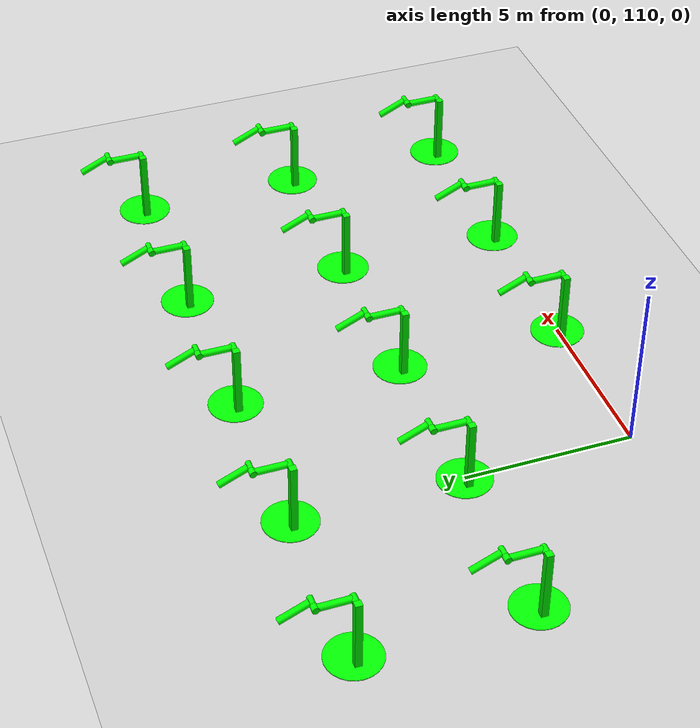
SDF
<sdf version="1.6">
 <world name="double_pendulums">
  <model name="ground_plane">
   <static>true</static>
   <link name="link">
    <collision name="collision">
     <geometry><plane><normal>0 0 1</normal><size>100 100</size></plane></geometry>
    </collision>
    <visual name="visual">
     <geometry><plane><normal>0 0 1</normal><size>100 100</size></plane></geometry>
     <material>
      <ambient>0.8 0.8 0.8 1</ambient>
      <diffuse>0.8 0.8 0.8 1</diffuse>
      <specular>0.8 0.8 0.8 1</specular>
     </material>
    </visual>
   </link>
  </model>
  <model name="dbl_pendulum_561">
   <pose>5 110 0 0 0 0</pose>
   <link name="base">
    <inertial><mass>100</mass></inertial>
    <visual name="vis_plate_on_ground">
     <pose>0 0 0.01 0 0 0</pose>
     <geometry><cylinder><radius>0.8</radius><length>0.02</length></cylinder></geometry>
     <material><ambient>0 1 0 1</ambient><diffuse>0 1 0 1</diffuse><specular>0 1 0 1</specular></material>
    </visual>
    <visual name="vis_pole">
     <pose>-0.275 0 1.1 0 0 0</pose>
     <geometry><box><size>0.2 0.2 2.2</size></box></geometry>
     <material><ambient>0 1 0 1</ambient><diffuse>0 1 0 1</diffuse><specular>0 1 0 1</specular></material>
    </visual>
    <collision name="col_plate_on_ground">
     <pose>0 0 0.01 0 0 0</pose>
     <geometry><cylinder><radius>0.8</radius><length>0.02</length></cylinder></geometry>
    </collision>
    <collision name="col_pole">
     <pose>-0.275 0 1.1 0 0 0</pose>
     <geometry><box><size>0.2 0.2 2.2</size></box></geometry>
    </collision>
   </link>
   <link name="upper_link">
    <pose>0 0 2.1 -1.5708 0 0</pose>
    <inertial><pose>0 0 0.5 0 0 0</pose></inertial>
    <visual name="vis_upper_joint">
     <pose>-0.05 0 0 0 1.5708 0</pose>
     <geometry><cylinder><radius>0.1</radius><length>0.3</length></cylinder></geometry>
     <material><ambient>0 1 0 1</ambient><diffuse>0 1 0 1</diffuse><specular>0 1 0 1</specular></material>
    </visual>
    <visual name="vis_lower_joint">
     <pose>0 0 1.0 0 1.5708 0</pose>
     <geometry><cylinder><radius>0.1</radius><length>0.2</length></cylinder></geometry>
     <material><ambient>0 1 0 1</ambient><diffuse>0 1 0 1</diffuse><specular>0 1 0 1</specular></material>
    </visual>
    <visual name="vis_cylinder">
     <pose>0 0 0.5 0 0 0</pose>
     <geometry><cylinder><radius>0.1</radius><length>0.9</length></cylinder></geometry>
     <material><ambient>0 1 0 1</ambient><diffuse>0 1 0 1</diffuse><specular>0 1 0 1</specular></material>
    </visual>
    <collision name="col_upper_joint">
     <pose>-0.05 0 0 0 1.5708 0</pose>
     <geometry><cylinder><radius>0.1</radius><length>0.3</length></cylinder></geometry>
    </collision>
    <collision name="col_lower_joint">
     <pose>0 0 1.0 0 1.5708 0</pose>
     <geometry><cylinder><radius>0.1</radius><length>0.2</length></cylinder></geometry>
    </collision>
    <collision name="col_cylinder">
     <pose>0 0 0.5 0 0 0</pose>
     <geometry><cylinder><radius>0.1</radius><length>0.9</length></cylinder></geometry>
    </collision>
   </link>
   <link name="lower_link">
    <pose>0.25 1.0 2.1 -2 0 0</pose>
    <inertial><pose>0 0 0.5 0 0 0</pose></inertial>
    <visual name="vis_lower_joint">
     <pose>0 0 0 0 1.5708 0</pose>
     <geometry><cylinder><radius>0.08</radius><length>0.3</length></cylinder></geometry>
     <material><ambient>0 1 0 1</ambient><diffuse>0 1 0 1</diffuse><specular>0 1 0 1</specular></material>
    </visual>
    <visual name="vis_cylinder">
     <pose>0 0 0.5 0 0 0</pose>
     <geometry><cylinder><radius>0.1</radius><length>0.9</length></cylinder></geometry>
     <material><ambient>0 1 0 1</ambient><diffuse>0 1 0 1</diffuse><specular>0 1 0 1</specular></material>
    </visual>
    <collision name="col_lower_joint">
     <pose>0 0 0 0 1.5708 0</pose>
     <geometry><cylinder><radius>0.08</radius><length>0.3</length></cylinder></geometry>
    </collision>
    <collision name="col_cylinder">
     <pose>0 0 0.5 0 0 0</pose>
     <geometry><cylinder><radius>0.1</radius><length>0.9</length></cylinder></geometry>
    </collision>
   </link>
   <joint name="upper_joint" type="revolute">
    <parent>base</parent>
    <child>upper_link</child>
    <axis><xyz>1.0 0 0</xyz></axis>
   </joint>
   <joint name="lower_joint" type="revolute">
    <parent>upper_link</parent>
    <child>lower_link</child>
    <axis><xyz>1.0 0 0</xyz></axis>
   </joint>
  </model>
  <model name="dbl_pendulum_562">
   <pose>10 110 0 0 0 0</pose>
   <link name="base">
    <inertial><mass>100</mass></inertial>
    <visual name="vis_plate_on_ground">
     <pose>0 0 0.01 0 0 0</pose>
     <geometry><cylinder><radius>0.8</radius><length>0.02</length></cylinder></geometry>
     <material><ambient>0 1 0 1</ambient><diffuse>0 1 0 1</diffuse><specular>0 1 0 1</specular></material>
    </visual>
    <visual name="vis_pole">
     <pose>-0.275 0 1.1 0 0 0</pose>
     <geometry><box><size>0.2 0.2 2.2</size></box></geometry>
     <material><ambient>0 1 0 1</ambient><diffuse>0 1 0 1</diffuse><specular>0 1 0 1</specular></material>
    </visual>
    <collision name="col_plate_on_ground">
     <pose>0 0 0.01 0 0 0</pose>
     <geometry><cylinder><radius>0.8</radius><length>0.02</length></cylinder></geometry>
    </collision>
    <collision name="col_pole">
     <pose>-0.275 0 1.1 0 0 0</pose>
     <geometry><box><size>0.2 0.2 2.2</size></box></geometry>
    </collision>
   </link>
   <link name="upper_link">
    <pose>0 0 2.1 -1.5708 0 0</pose>
    <inertial><pose>0 0 0.5 0 0 0</pose></inertial>
    <visual name="vis_upper_joint">
     <pose>-0.05 0 0 0 1.5708 0</pose>
     <geometry><cylinder><radius>0.1</radius><length>0.3</length></cylinder></geometry>
     <material><ambient>0 1 0 1</ambient><diffuse>0 1 0 1</diffuse><specular>0 1 0 1</specular></material>
    </visual>
    <visual name="vis_lower_joint">
     <pose>0 0 1.0 0 1.5708 0</pose>
     <geometry><cylinder><radius>0.1</radius><length>0.2</length></cylinder></geometry>
     <material><ambient>0 1 0 1</ambient><diffuse>0 1 0 1</diffuse><specular>0 1 0 1</specular></material>
    </visual>
    <visual name="vis_cylinder">
     <pose>0 0 0.5 0 0 0</pose>
     <geometry><cylinder><radius>0.1</radius><length>0.9</length></cylinder></geometry>
     <material><ambient>0 1 0 1</ambient><diffuse>0 1 0 1</diffuse><specular>0 1 0 1</specular></material>
    </visual>
    <collision name="col_upper_joint">
     <pose>-0.05 0 0 0 1.5708 0</pose>
     <geometry><cylinder><radius>0.1</radius><length>0.3</length></cylinder></geometry>
    </collision>
    <collision name="col_lower_joint">
     <pose>0 0 1.0 0 1.5708 0</pose>
     <geometry><cylinder><radius>0.1</radius><length>0.2</length></cylinder></geometry>
    </collision>
    <collision name="col_cylinder">
     <pose>0 0 0.5 0 0 0</pose>
     <geometry><cylinder><radius>0.1</radius><length>0.9</length></cylinder></geometry>
    </collision>
   </link>
   <link name="lower_link">
    <pose>0.25 1.0 2.1 -2 0 0</pose>
    <inertial><pose>0 0 0.5 0 0 0</pose></inertial>
    <visual name="vis_lower_joint">
     <pose>0 0 0 0 1.5708 0</pose>
     <geometry><cylinder><radius>0.08</radius><length>0.3</length></cylinder></geometry>
     <material><ambient>0 1 0 1</ambient><diffuse>0 1 0 1</diffuse><specular>0 1 0 1</specular></material>
    </visual>
    <visual name="vis_cylinder">
     <pose>0 0 0.5 0 0 0</pose>
     <geometry><cylinder><radius>0.1</radius><length>0.9</length></cylinder></geometry>
     <material><ambient>0 1 0 1</ambient><diffuse>0 1 0 1</diffuse><specular>0 1 0 1</specular></material>
    </visual>
    <collision name="col_lower_joint">
     <pose>0 0 0 0 1.5708 0</pose>
     <geometry><cylinder><radius>0.08</radius><length>0.3</length></cylinder></geometry>
    </collision>
    <collision name="col_cylinder">
     <pose>0 0 0.5 0 0 0</pose>
     <geometry><cylinder><radius>0.1</radius><length>0.9</length></cylinder></geometry>
    </collision>
   </link>
   <joint name="upper_joint" type="revolute">
    <parent>base</parent>
    <child>upper_link</child>
    <axis><xyz>1.0 0 0</xyz></axis>
   </joint>
   <joint name="lower_joint" type="revolute">
    <parent>upper_link</parent>
    <child>lower_link</child>
    <axis><xyz>1.0 0 0</xyz></axis>
   </joint>
  </model>
  <model name="dbl_pendulum_563">
   <pose>15 110 0 0 0 0</pose>
   <link name="base">
    <inertial><mass>100</mass></inertial>
    <visual name="vis_plate_on_ground">
     <pose>0 0 0.01 0 0 0</pose>
     <geometry><cylinder><radius>0.8</radius><length>0.02</length></cylinder></geometry>
     <material><ambient>0 1 0 1</ambient><diffuse>0 1 0 1</diffuse><specular>0 1 0 1</specular></material>
    </visual>
    <visual name="vis_pole">
     <pose>-0.275 0 1.1 0 0 0</pose>
     <geometry><box><size>0.2 0.2 2.2</size></box></geometry>
     <material><ambient>0 1 0 1</ambient><diffuse>0 1 0 1</diffuse><specular>0 1 0 1</specular></material>
    </visual>
    <collision name="col_plate_on_ground">
     <pose>0 0 0.01 0 0 0</pose>
     <geometry><cylinder><radius>0.8</radius><length>0.02</length></cylinder></geometry>
    </collision>
    <collision name="col_pole">
     <pose>-0.275 0 1.1 0 0 0</pose>
     <geometry><box><size>0.2 0.2 2.2</size></box></geometry>
    </collision>
   </link>
   <link name="upper_link">
    <pose>0 0 2.1 -1.5708 0 0</pose>
    <inertial><pose>0 0 0.5 0 0 0</pose></inertial>
    <visual name="vis_upper_joint">
     <pose>-0.05 0 0 0 1.5708 0</pose>
     <geometry><cylinder><radius>0.1</radius><length>0.3</length></cylinder></geometry>
     <material><ambient>0 1 0 1</ambient><diffuse>0 1 0 1</diffuse><specular>0 1 0 1</specular></material>
    </visual>
    <visual name="vis_lower_joint">
     <pose>0 0 1.0 0 1.5708 0</pose>
     <geometry><cylinder><radius>0.1</radius><length>0.2</length></cylinder></geometry>
     <material><ambient>0 1 0 1</ambient><diffuse>0 1 0 1</diffuse><specular>0 1 0 1</specular></material>
    </visual>
    <visual name="vis_cylinder">
     <pose>0 0 0.5 0 0 0</pose>
     <geometry><cylinder><radius>0.1</radius><length>0.9</length></cylinder></geometry>
     <material><ambient>0 1 0 1</ambient><diffuse>0 1 0 1</diffuse><specular>0 1 0 1</specular></material>
    </visual>
    <collision name="col_upper_joint">
     <pose>-0.05 0 0 0 1.5708 0</pose>
     <geometry><cylinder><radius>0.1</radius><length>0.3</length></cylinder></geometry>
    </collision>
    <collision name="col_lower_joint">
     <pose>0 0 1.0 0 1.5708 0</pose>
     <geometry><cylinder><radius>0.1</radius><length>0.2</length></cylinder></geometry>
    </collision>
    <collision name="col_cylinder">
     <pose>0 0 0.5 0 0 0</pose>
     <geometry><cylinder><radius>0.1</radius><length>0.9</length></cylinder></geometry>
    </collision>
   </link>
   <link name="lower_link">
    <pose>0.25 1.0 2.1 -2 0 0</pose>
    <inertial><pose>0 0 0.5 0 0 0</pose></inertial>
    <visual name="vis_lower_joint">
     <pose>0 0 0 0 1.5708 0</pose>
     <geometry><cylinder><radius>0.08</radius><length>0.3</length></cylinder></geometry>
     <material><ambient>0 1 0 1</ambient><diffuse>0 1 0 1</diffuse><specular>0 1 0 1</specular></material>
    </visual>
    <visual name="vis_cylinder">
     <pose>0 0 0.5 0 0 0</pose>
     <geometry><cylinder><radius>0.1</radius><length>0.9</length></cylinder></geometry>
     <material><ambient>0 1 0 1</ambient><diffuse>0 1 0 1</diffuse><specular>0 1 0 1</specular></material>
    </visual>
    <collision name="col_lower_joint">
     <pose>0 0 0 0 1.5708 0</pose>
     <geometry><cylinder><radius>0.08</radius><length>0.3</length></cylinder></geometry>
    </collision>
    <collision name="col_cylinder">
     <pose>0 0 0.5 0 0 0</pose>
     <geometry><cylinder><radius>0.1</radius><length>0.9</length></cylinder></geometry>
    </collision>
   </link>
   <joint name="upper_joint" type="revolute">
    <parent>base</parent>
    <child>upper_link</child>
    <axis><xyz>1.0 0 0</xyz></axis>
   </joint>
   <joint name="lower_joint" type="revolute">
    <parent>upper_link</parent>
    <child>lower_link</child>
    <axis><xyz>1.0 0 0</xyz></axis>
   </joint>
  </model>
  <model name="dbl_pendulum_584">
   <pose>-5 115 0 0 0 0</pose>
   <link name="base">
    <inertial><mass>100</mass></inertial>
    <visual name="vis_plate_on_ground">
     <pose>0 0 0.01 0 0 0</pose>
     <geometry><cylinder><radius>0.8</radius><length>0.02</length></cylinder></geometry>
     <material><ambient>0 1 0 1</ambient><diffuse>0 1 0 1</diffuse><specular>0 1 0 1</specular></material>
    </visual>
    <visual name="vis_pole">
     <pose>-0.275 0 1.1 0 0 0</pose>
     <geometry><box><size>0.2 0.2 2.2</size></box></geometry>
     <material><ambient>0 1 0 1</ambient><diffuse>0 1 0 1</diffuse><specular>0 1 0 1</specular></material>
    </visual>
    <collision name="col_plate_on_ground">
     <pose>0 0 0.01 0 0 0</pose>
     <geometry><cylinder><radius>0.8</radius><length>0.02</length></cylinder></geometry>
    </collision>
    <collision name="col_pole">
     <pose>-0.275 0 1.1 0 0 0</pose>
     <geometry><box><size>0.2 0.2 2.2</size></box></geometry>
    </collision>
   </link>
   <link name="upper_link">
    <pose>0 0 2.1 -1.5708 0 0</pose>
    <inertial><pose>0 0 0.5 0 0 0</pose></inertial>
    <visual name="vis_upper_joint">
     <pose>-0.05 0 0 0 1.5708 0</pose>
     <geometry><cylinder><radius>0.1</radius><length>0.3</length></cylinder></geometry>
     <material><ambient>0 1 0 1</ambient><diffuse>0 1 0 1</diffuse><specular>0 1 0 1</specular></material>
    </visual>
    <visual name="vis_lower_joint">
     <pose>0 0 1.0 0 1.5708 0</pose>
     <geometry><cylinder><radius>0.1</radius><length>0.2</length></cylinder></geometry>
     <material><ambient>0 1 0 1</ambient><diffuse>0 1 0 1</diffuse><specular>0 1 0 1</specular></material>
    </visual>
    <visual name="vis_cylinder">
     <pose>0 0 0.5 0 0 0</pose>
     <geometry><cylinder><radius>0.1</radius><length>0.9</length></cylinder></geometry>
     <material><ambient>0 1 0 1</ambient><diffuse>0 1 0 1</diffuse><specular>0 1 0 1</specular></material>
    </visual>
    <collision name="col_upper_joint">
     <pose>-0.05 0 0 0 1.5708 0</pose>
     <geometry><cylinder><radius>0.1</radius><length>0.3</length></cylinder></geometry>
    </collision>
    <collision name="col_lower_joint">
     <pose>0 0 1.0 0 1.5708 0</pose>
     <geometry><cylinder><radius>0.1</radius><length>0.2</length></cylinder></geometry>
    </collision>
    <collision name="col_cylinder">
     <pose>0 0 0.5 0 0 0</pose>
     <geometry><cylinder><radius>0.1</radius><length>0.9</length></cylinder></geometry>
    </collision>
   </link>
   <link name="lower_link">
    <pose>0.25 1.0 2.1 -2 0 0</pose>
    <inertial><pose>0 0 0.5 0 0 0</pose></inertial>
    <visual name="vis_lower_joint">
     <pose>0 0 0 0 1.5708 0</pose>
     <geometry><cylinder><radius>0.08</radius><length>0.3</length></cylinder></geometry>
     <material><ambient>0 1 0 1</ambient><diffuse>0 1 0 1</diffuse><specular>0 1 0 1</specular></material>
    </visual>
    <visual name="vis_cylinder">
     <pose>0 0 0.5 0 0 0</pose>
     <geometry><cylinder><radius>0.1</radius><length>0.9</length></cylinder></geometry>
     <material><ambient>0 1 0 1</ambient><diffuse>0 1 0 1</diffuse><specular>0 1 0 1</specular></material>
    </visual>
    <collision name="col_lower_joint">
     <pose>0 0 0 0 1.5708 0</pose>
     <geometry><cylinder><radius>0.08</radius><length>0.3</length></cylinder></geometry>
    </collision>
    <collision name="col_cylinder">
     <pose>0 0 0.5 0 0 0</pose>
     <geometry><cylinder><radius>0.1</radius><length>0.9</length></cylinder></geometry>
    </collision>
   </link>
   <joint name="upper_joint" type="revolute">
    <parent>base</parent>
    <child>upper_link</child>
    <axis><xyz>1.0 0 0</xyz></axis>
   </joint>
   <joint name="lower_joint" type="revolute">
    <parent>upper_link</parent>
    <child>lower_link</child>
    <axis><xyz>1.0 0 0</xyz></axis>
   </joint>
  </model>
  <model name="dbl_pendulum_585">
   <pose>0 115 0 0 0 0</pose>
   <link name="base">
    <inertial><mass>100</mass></inertial>
    <visual name="vis_plate_on_ground">
     <pose>0 0 0.01 0 0 0</pose>
     <geometry><cylinder><radius>0.8</radius><length>0.02</length></cylinder></geometry>
     <material><ambient>0 1 0 1</ambient><diffuse>0 1 0 1</diffuse><specular>0 1 0 1</specular></material>
    </visual>
    <visual name="vis_pole">
     <pose>-0.275 0 1.1 0 0 0</pose>
     <geometry><box><size>0.2 0.2 2.2</size></box></geometry>
     <material><ambient>0 1 0 1</ambient><diffuse>0 1 0 1</diffuse><specular>0 1 0 1</specular></material>
    </visual>
    <collision name="col_plate_on_ground">
     <pose>0 0 0.01 0 0 0</pose>
     <geometry><cylinder><radius>0.8</radius><length>0.02</length></cylinder></geometry>
    </collision>
    <collision name="col_pole">
     <pose>-0.275 0 1.1 0 0 0</pose>
     <geometry><box><size>0.2 0.2 2.2</size></box></geometry>
    </collision>
   </link>
   <link name="upper_link">
    <pose>0 0 2.1 -1.5708 0 0</pose>
    <inertial><pose>0 0 0.5 0 0 0</pose></inertial>
    <visual name="vis_upper_joint">
     <pose>-0.05 0 0 0 1.5708 0</pose>
     <geometry><cylinder><radius>0.1</radius><length>0.3</length></cylinder></geometry>
     <material><ambient>0 1 0 1</ambient><diffuse>0 1 0 1</diffuse><specular>0 1 0 1</specular></material>
    </visual>
    <visual name="vis_lower_joint">
     <pose>0 0 1.0 0 1.5708 0</pose>
     <geometry><cylinder><radius>0.1</radius><length>0.2</length></cylinder></geometry>
     <material><ambient>0 1 0 1</ambient><diffuse>0 1 0 1</diffuse><specular>0 1 0 1</specular></material>
    </visual>
    <visual name="vis_cylinder">
     <pose>0 0 0.5 0 0 0</pose>
     <geometry><cylinder><radius>0.1</radius><length>0.9</length></cylinder></geometry>
     <material><ambient>0 1 0 1</ambient><diffuse>0 1 0 1</diffuse><specular>0 1 0 1</specular></material>
    </visual>
    <collision name="col_upper_joint">
     <pose>-0.05 0 0 0 1.5708 0</pose>
     <geometry><cylinder><radius>0.1</radius><length>0.3</length></cylinder></geometry>
    </collision>
    <collision name="col_lower_joint">
     <pose>0 0 1.0 0 1.5708 0</pose>
     <geometry><cylinder><radius>0.1</radius><length>0.2</length></cylinder></geometry>
    </collision>
    <collision name="col_cylinder">
     <pose>0 0 0.5 0 0 0</pose>
     <geometry><cylinder><radius>0.1</radius><length>0.9</length></cylinder></geometry>
    </collision>
   </link>
   <link name="lower_link">
    <pose>0.25 1.0 2.1 -2 0 0</pose>
    <inertial><pose>0 0 0.5 0 0 0</pose></inertial>
    <visual name="vis_lower_joint">
     <pose>0 0 0 0 1.5708 0</pose>
     <geometry><cylinder><radius>0.08</radius><length>0.3</length></cylinder></geometry>
     <material><ambient>0 1 0 1</ambient><diffuse>0 1 0 1</diffuse><specular>0 1 0 1</specular></material>
    </visual>
    <visual name="vis_cylinder">
     <pose>0 0 0.5 0 0 0</pose>
     <geometry><cylinder><radius>0.1</radius><length>0.9</length></cylinder></geometry>
     <material><ambient>0 1 0 1</ambient><diffuse>0 1 0 1</diffuse><specular>0 1 0 1</specular></material>
    </visual>
    <collision name="col_lower_joint">
     <pose>0 0 0 0 1.5708 0</pose>
     <geometry><cylinder><radius>0.08</radius><length>0.3</length></cylinder></geometry>
    </collision>
    <collision name="col_cylinder">
     <pose>0 0 0.5 0 0 0</pose>
     <geometry><cylinder><radius>0.1</radius><length>0.9</length></cylinder></geometry>
    </collision>
   </link>
   <joint name="upper_joint" type="revolute">
    <parent>base</parent>
    <child>upper_link</child>
    <axis><xyz>1.0 0 0</xyz></axis>
   </joint>
   <joint name="lower_joint" type="revolute">
    <parent>upper_link</parent>
    <child>lower_link</child>
    <axis><xyz>1.0 0 0</xyz></axis>
   </joint>
  </model>
  <model name="dbl_pendulum_586">
   <pose>5 115 0 0 0 0</pose>
   <link name="base">
    <inertial><mass>100</mass></inertial>
    <visual name="vis_plate_on_ground">
     <pose>0 0 0.01 0 0 0</pose>
     <geometry><cylinder><radius>0.8</radius><length>0.02</length></cylinder></geometry>
     <material><ambient>0 1 0 1</ambient><diffuse>0 1 0 1</diffuse><specular>0 1 0 1</specular></material>
    </visual>
    <visual name="vis_pole">
     <pose>-0.275 0 1.1 0 0 0</pose>
     <geometry><box><size>0.2 0.2 2.2</size></box></geometry>
     <material><ambient>0 1 0 1</ambient><diffuse>0 1 0 1</diffuse><specular>0 1 0 1</specular></material>
    </visual>
    <collision name="col_plate_on_ground">
     <pose>0 0 0.01 0 0 0</pose>
     <geometry><cylinder><radius>0.8</radius><length>0.02</length></cylinder></geometry>
    </collision>
    <collision name="col_pole">
     <pose>-0.275 0 1.1 0 0 0</pose>
     <geometry><box><size>0.2 0.2 2.2</size></box></geometry>
    </collision>
   </link>
   <link name="upper_link">
    <pose>0 0 2.1 -1.5708 0 0</pose>
    <inertial><pose>0 0 0.5 0 0 0</pose></inertial>
    <visual name="vis_upper_joint">
     <pose>-0.05 0 0 0 1.5708 0</pose>
     <geometry><cylinder><radius>0.1</radius><length>0.3</length></cylinder></geometry>
     <material><ambient>0 1 0 1</ambient><diffuse>0 1 0 1</diffuse><specular>0 1 0 1</specular></material>
    </visual>
    <visual name="vis_lower_joint">
     <pose>0 0 1.0 0 1.5708 0</pose>
     <geometry><cylinder><radius>0.1</radius><length>0.2</length></cylinder></geometry>
     <material><ambient>0 1 0 1</ambient><diffuse>0 1 0 1</diffuse><specular>0 1 0 1</specular></material>
    </visual>
    <visual name="vis_cylinder">
     <pose>0 0 0.5 0 0 0</pose>
     <geometry><cylinder><radius>0.1</radius><length>0.9</length></cylinder></geometry>
     <material><ambient>0 1 0 1</ambient><diffuse>0 1 0 1</diffuse><specular>0 1 0 1</specular></material>
    </visual>
    <collision name="col_upper_joint">
     <pose>-0.05 0 0 0 1.5708 0</pose>
     <geometry><cylinder><radius>0.1</radius><length>0.3</length></cylinder></geometry>
    </collision>
    <collision name="col_lower_joint">
     <pose>0 0 1.0 0 1.5708 0</pose>
     <geometry><cylinder><radius>0.1</radius><length>0.2</length></cylinder></geometry>
    </collision>
    <collision name="col_cylinder">
     <pose>0 0 0.5 0 0 0</pose>
     <geometry><cylinder><radius>0.1</radius><length>0.9</length></cylinder></geometry>
    </collision>
   </link>
   <link name="lower_link">
    <pose>0.25 1.0 2.1 -2 0 0</pose>
    <inertial><pose>0 0 0.5 0 0 0</pose></inertial>
    <visual name="vis_lower_joint">
     <pose>0 0 0 0 1.5708 0</pose>
     <geometry><cylinder><radius>0.08</radius><length>0.3</length></cylinder></geometry>
     <material><ambient>0 1 0 1</ambient><diffuse>0 1 0 1</diffuse><specular>0 1 0 1</specular></material>
    </visual>
    <visual name="vis_cylinder">
     <pose>0 0 0.5 0 0 0</pose>
     <geometry><cylinder><radius>0.1</radius><length>0.9</length></cylinder></geometry>
     <material><ambient>0 1 0 1</ambient><diffuse>0 1 0 1</diffuse><specular>0 1 0 1</specular></material>
    </visual>
    <collision name="col_lower_joint">
     <pose>0 0 0 0 1.5708 0</pose>
     <geometry><cylinder><radius>0.08</radius><length>0.3</length></cylinder></geometry>
    </collision>
    <collision name="col_cylinder">
     <pose>0 0 0.5 0 0 0</pose>
     <geometry><cylinder><radius>0.1</radius><length>0.9</length></cylinder></geometry>
    </collision>
   </link>
   <joint name="upper_joint" type="revolute">
    <parent>base</parent>
    <child>upper_link</child>
    <axis><xyz>1.0 0 0</xyz></axis>
   </joint>
   <joint name="lower_joint" type="revolute">
    <parent>upper_link</parent>
    <child>lower_link</child>
    <axis><xyz>1.0 0 0</xyz></axis>
   </joint>
  </model>
  <model name="dbl_pendulum_587">
   <pose>10 115 0 0 0 0</pose>
   <link name="base">
    <inertial><mass>100</mass></inertial>
    <visual name="vis_plate_on_ground">
     <pose>0 0 0.01 0 0 0</pose>
     <geometry><cylinder><radius>0.8</radius><length>0.02</length></cylinder></geometry>
     <material><ambient>0 1 0 1</ambient><diffuse>0 1 0 1</diffuse><specular>0 1 0 1</specular></material>
    </visual>
    <visual name="vis_pole">
     <pose>-0.275 0 1.1 0 0 0</pose>
     <geometry><box><size>0.2 0.2 2.2</size></box></geometry>
     <material><ambient>0 1 0 1</ambient><diffuse>0 1 0 1</diffuse><specular>0 1 0 1</specular></material>
    </visual>
    <collision name="col_plate_on_ground">
     <pose>0 0 0.01 0 0 0</pose>
     <geometry><cylinder><radius>0.8</radius><length>0.02</length></cylinder></geometry>
    </collision>
    <collision name="col_pole">
     <pose>-0.275 0 1.1 0 0 0</pose>
     <geometry><box><size>0.2 0.2 2.2</size></box></geometry>
    </collision>
   </link>
   <link name="upper_link">
    <pose>0 0 2.1 -1.5708 0 0</pose>
    <inertial><pose>0 0 0.5 0 0 0</pose></inertial>
    <visual name="vis_upper_joint">
     <pose>-0.05 0 0 0 1.5708 0</pose>
     <geometry><cylinder><radius>0.1</radius><length>0.3</length></cylinder></geometry>
     <material><ambient>0 1 0 1</ambient><diffuse>0 1 0 1</diffuse><specular>0 1 0 1</specular></material>
    </visual>
    <visual name="vis_lower_joint">
     <pose>0 0 1.0 0 1.5708 0</pose>
     <geometry><cylinder><radius>0.1</radius><length>0.2</length></cylinder></geometry>
     <material><ambient>0 1 0 1</ambient><diffuse>0 1 0 1</diffuse><specular>0 1 0 1</specular></material>
    </visual>
    <visual name="vis_cylinder">
     <pose>0 0 0.5 0 0 0</pose>
     <geometry><cylinder><radius>0.1</radius><length>0.9</length></cylinder></geometry>
     <material><ambient>0 1 0 1</ambient><diffuse>0 1 0 1</diffuse><specular>0 1 0 1</specular></material>
    </visual>
    <collision name="col_upper_joint">
     <pose>-0.05 0 0 0 1.5708 0</pose>
     <geometry><cylinder><radius>0.1</radius><length>0.3</length></cylinder></geometry>
    </collision>
    <collision name="col_lower_joint">
     <pose>0 0 1.0 0 1.5708 0</pose>
     <geometry><cylinder><radius>0.1</radius><length>0.2</length></cylinder></geometry>
    </collision>
    <collision name="col_cylinder">
     <pose>0 0 0.5 0 0 0</pose>
     <geometry><cylinder><radius>0.1</radius><length>0.9</length></cylinder></geometry>
    </collision>
   </link>
   <link name="lower_link">
    <pose>0.25 1.0 2.1 -2 0 0</pose>
    <inertial><pose>0 0 0.5 0 0 0</pose></inertial>
    <visual name="vis_lower_joint">
     <pose>0 0 0 0 1.5708 0</pose>
     <geometry><cylinder><radius>0.08</radius><length>0.3</length></cylinder></geometry>
     <material><ambient>0 1 0 1</ambient><diffuse>0 1 0 1</diffuse><specular>0 1 0 1</specular></material>
    </visual>
    <visual name="vis_cylinder">
     <pose>0 0 0.5 0 0 0</pose>
     <geometry><cylinder><radius>0.1</radius><length>0.9</length></cylinder></geometry>
     <material><ambient>0 1 0 1</ambient><diffuse>0 1 0 1</diffuse><specular>0 1 0 1</specular></material>
    </visual>
    <collision name="col_lower_joint">
     <pose>0 0 0 0 1.5708 0</pose>
     <geometry><cylinder><radius>0.08</radius><length>0.3</length></cylinder></geometry>
    </collision>
    <collision name="col_cylinder">
     <pose>0 0 0.5 0 0 0</pose>
     <geometry><cylinder><radius>0.1</radius><length>0.9</length></cylinder></geometry>
    </collision>
   </link>
   <joint name="upper_joint" type="revolute">
    <parent>base</parent>
    <child>upper_link</child>
    <axis><xyz>1.0 0 0</xyz></axis>
   </joint>
   <joint name="lower_joint" type="revolute">
    <parent>upper_link</parent>
    <child>lower_link</child>
    <axis><xyz>1.0 0 0</xyz></axis>
   </joint>
  </model>
  <model name="dbl_pendulum_588">
   <pose>15 115 0 0 0 0</pose>
   <link name="base">
    <inertial><mass>100</mass></inertial>
    <visual name="vis_plate_on_ground">
     <pose>0 0 0.01 0 0 0</pose>
     <geometry><cylinder><radius>0.8</radius><length>0.02</length></cylinder></geometry>
     <material><ambient>0 1 0 1</ambient><diffuse>0 1 0 1</diffuse><specular>0 1 0 1</specular></material>
    </visual>
    <visual name="vis_pole">
     <pose>-0.275 0 1.1 0 0 0</pose>
     <geometry><box><size>0.2 0.2 2.2</size></box></geometry>
     <material><ambient>0 1 0 1</ambient><diffuse>0 1 0 1</diffuse><specular>0 1 0 1</specular></material>
    </visual>
    <collision name="col_plate_on_ground">
     <pose>0 0 0.01 0 0 0</pose>
     <geometry><cylinder><radius>0.8</radius><length>0.02</length></cylinder></geometry>
    </collision>
    <collision name="col_pole">
     <pose>-0.275 0 1.1 0 0 0</pose>
     <geometry><box><size>0.2 0.2 2.2</size></box></geometry>
    </collision>
   </link>
   <link name="upper_link">
    <pose>0 0 2.1 -1.5708 0 0</pose>
    <inertial><pose>0 0 0.5 0 0 0</pose></inertial>
    <visual name="vis_upper_joint">
     <pose>-0.05 0 0 0 1.5708 0</pose>
     <geometry><cylinder><radius>0.1</radius><length>0.3</length></cylinder></geometry>
     <material><ambient>0 1 0 1</ambient><diffuse>0 1 0 1</diffuse><specular>0 1 0 1</specular></material>
    </visual>
    <visual name="vis_lower_joint">
     <pose>0 0 1.0 0 1.5708 0</pose>
     <geometry><cylinder><radius>0.1</radius><length>0.2</length></cylinder></geometry>
     <material><ambient>0 1 0 1</ambient><diffuse>0 1 0 1</diffuse><specular>0 1 0 1</specular></material>
    </visual>
    <visual name="vis_cylinder">
     <pose>0 0 0.5 0 0 0</pose>
     <geometry><cylinder><radius>0.1</radius><length>0.9</length></cylinder></geometry>
     <material><ambient>0 1 0 1</ambient><diffuse>0 1 0 1</diffuse><specular>0 1 0 1</specular></material>
    </visual>
    <collision name="col_upper_joint">
     <pose>-0.05 0 0 0 1.5708 0</pose>
     <geometry><cylinder><radius>0.1</radius><length>0.3</length></cylinder></geometry>
    </collision>
    <collision name="col_lower_joint">
     <pose>0 0 1.0 0 1.5708 0</pose>
     <geometry><cylinder><radius>0.1</radius><length>0.2</length></cylinder></geometry>
    </collision>
    <collision name="col_cylinder">
     <pose>0 0 0.5 0 0 0</pose>
     <geometry><cylinder><radius>0.1</radius><length>0.9</length></cylinder></geometry>
    </collision>
   </link>
   <link name="lower_link">
    <pose>0.25 1.0 2.1 -2 0 0</pose>
    <inertial><pose>0 0 0.5 0 0 0</pose></inertial>
    <visual name="vis_lower_joint">
     <pose>0 0 0 0 1.5708 0</pose>
     <geometry><cylinder><radius>0.08</radius><length>0.3</length></cylinder></geometry>
     <material><ambient>0 1 0 1</ambient><diffuse>0 1 0 1</diffuse><specular>0 1 0 1</specular></material>
    </visual>
    <visual name="vis_cylinder">
     <pose>0 0 0.5 0 0 0</pose>
     <geometry><cylinder><radius>0.1</radius><length>0.9</length></cylinder></geometry>
     <material><ambient>0 1 0 1</ambient><diffuse>0 1 0 1</diffuse><specular>0 1 0 1</specular></material>
    </visual>
    <collision name="col_lower_joint">
     <pose>0 0 0 0 1.5708 0</pose>
     <geometry><cylinder><radius>0.08</radius><length>0.3</length></cylinder></geometry>
    </collision>
    <collision name="col_cylinder">
     <pose>0 0 0.5 0 0 0</pose>
     <geometry><cylinder><radius>0.1</radius><length>0.9</length></cylinder></geometry>
    </collision>
   </link>
   <joint name="upper_joint" type="revolute">
    <parent>base</parent>
    <child>upper_link</child>
    <axis><xyz>1.0 0 0</xyz></axis>
   </joint>
   <joint name="lower_joint" type="revolute">
    <parent>upper_link</parent>
    <child>lower_link</child>
    <axis><xyz>1.0 0 0</xyz></axis>
   </joint>
  </model>
  <model name="dbl_pendulum_609">
   <pose>-5 120 0 0 0 0</pose>
   <link name="base">
    <inertial><mass>100</mass></inertial>
    <visual name="vis_plate_on_ground">
     <pose>0 0 0.01 0 0 0</pose>
     <geometry><cylinder><radius>0.8</radius><length>0.02</length></cylinder></geometry>
     <material><ambient>0 1 0 1</ambient><diffuse>0 1 0 1</diffuse><specular>0 1 0 1</specular></material>
    </visual>
    <visual name="vis_pole">
     <pose>-0.275 0 1.1 0 0 0</pose>
     <geometry><box><size>0.2 0.2 2.2</size></box></geometry>
     <material><ambient>0 1 0 1</ambient><diffuse>0 1 0 1</diffuse><specular>0 1 0 1</specular></material>
    </visual>
    <collision name="col_plate_on_ground">
     <pose>0 0 0.01 0 0 0</pose>
     <geometry><cylinder><radius>0.8</radius><length>0.02</length></cylinder></geometry>
    </collision>
    <collision name="col_pole">
     <pose>-0.275 0 1.1 0 0 0</pose>
     <geometry><box><size>0.2 0.2 2.2</size></box></geometry>
    </collision>
   </link>
   <link name="upper_link">
    <pose>0 0 2.1 -1.5708 0 0</pose>
    <inertial><pose>0 0 0.5 0 0 0</pose></inertial>
    <visual name="vis_upper_joint">
     <pose>-0.05 0 0 0 1.5708 0</pose>
     <geometry><cylinder><radius>0.1</radius><length>0.3</length></cylinder></geometry>
     <material><ambient>0 1 0 1</ambient><diffuse>0 1 0 1</diffuse><specular>0 1 0 1</specular></material>
    </visual>
    <visual name="vis_lower_joint">
     <pose>0 0 1.0 0 1.5708 0</pose>
     <geometry><cylinder><radius>0.1</radius><length>0.2</length></cylinder></geometry>
     <material><ambient>0 1 0 1</ambient><diffuse>0 1 0 1</diffuse><specular>0 1 0 1</specular></material>
    </visual>
    <visual name="vis_cylinder">
     <pose>0 0 0.5 0 0 0</pose>
     <geometry><cylinder><radius>0.1</radius><length>0.9</length></cylinder></geometry>
     <material><ambient>0 1 0 1</ambient><diffuse>0 1 0 1</diffuse><specular>0 1 0 1</specular></material>
    </visual>
    <collision name="col_upper_joint">
     <pose>-0.05 0 0 0 1.5708 0</pose>
     <geometry><cylinder><radius>0.1</radius><length>0.3</length></cylinder></geometry>
    </collision>
    <collision name="col_lower_joint">
     <pose>0 0 1.0 0 1.5708 0</pose>
     <geometry><cylinder><radius>0.1</radius><length>0.2</length></cylinder></geometry>
    </collision>
    <collision name="col_cylinder">
     <pose>0 0 0.5 0 0 0</pose>
     <geometry><cylinder><radius>0.1</radius><length>0.9</length></cylinder></geometry>
    </collision>
   </link>
   <link name="lower_link">
    <pose>0.25 1.0 2.1 -2 0 0</pose>
    <inertial><pose>0 0 0.5 0 0 0</pose></inertial>
    <visual name="vis_lower_joint">
     <pose>0 0 0 0 1.5708 0</pose>
     <geometry><cylinder><radius>0.08</radius><length>0.3</length></cylinder></geometry>
     <material><ambient>0 1 0 1</ambient><diffuse>0 1 0 1</diffuse><specular>0 1 0 1</specular></material>
    </visual>
    <visual name="vis_cylinder">
     <pose>0 0 0.5 0 0 0</pose>
     <geometry><cylinder><radius>0.1</radius><length>0.9</length></cylinder></geometry>
     <material><ambient>0 1 0 1</ambient><diffuse>0 1 0 1</diffuse><specular>0 1 0 1</specular></material>
    </visual>
    <collision name="col_lower_joint">
     <pose>0 0 0 0 1.5708 0</pose>
     <geometry><cylinder><radius>0.08</radius><length>0.3</length></cylinder></geometry>
    </collision>
    <collision name="col_cylinder">
     <pose>0 0 0.5 0 0 0</pose>
     <geometry><cylinder><radius>0.1</radius><length>0.9</length></cylinder></geometry>
    </collision>
   </link>
   <joint name="upper_joint" type="revolute">
    <parent>base</parent>
    <child>upper_link</child>
    <axis><xyz>1.0 0 0</xyz></axis>
   </joint>
   <joint name="lower_joint" type="revolute">
    <parent>upper_link</parent>
    <child>lower_link</child>
    <axis><xyz>1.0 0 0</xyz></axis>
   </joint>
  </model>
  <model name="dbl_pendulum_610">
   <pose>0 120 0 0 0 0</pose>
   <link name="base">
    <inertial><mass>100</mass></inertial>
    <visual name="vis_plate_on_ground">
     <pose>0 0 0.01 0 0 0</pose>
     <geometry><cylinder><radius>0.8</radius><length>0.02</length></cylinder></geometry>
     <material><ambient>0 1 0 1</ambient><diffuse>0 1 0 1</diffuse><specular>0 1 0 1</specular></material>
    </visual>
    <visual name="vis_pole">
     <pose>-0.275 0 1.1 0 0 0</pose>
     <geometry><box><size>0.2 0.2 2.2</size></box></geometry>
     <material><ambient>0 1 0 1</ambient><diffuse>0 1 0 1</diffuse><specular>0 1 0 1</specular></material>
    </visual>
    <collision name="col_plate_on_ground">
     <pose>0 0 0.01 0 0 0</pose>
     <geometry><cylinder><radius>0.8</radius><length>0.02</length></cylinder></geometry>
    </collision>
    <collision name="col_pole">
     <pose>-0.275 0 1.1 0 0 0</pose>
     <geometry><box><size>0.2 0.2 2.2</size></box></geometry>
    </collision>
   </link>
   <link name="upper_link">
    <pose>0 0 2.1 -1.5708 0 0</pose>
    <inertial><pose>0 0 0.5 0 0 0</pose></inertial>
    <visual name="vis_upper_joint">
     <pose>-0.05 0 0 0 1.5708 0</pose>
     <geometry><cylinder><radius>0.1</radius><length>0.3</length></cylinder></geometry>
     <material><ambient>0 1 0 1</ambient><diffuse>0 1 0 1</diffuse><specular>0 1 0 1</specular></material>
    </visual>
    <visual name="vis_lower_joint">
     <pose>0 0 1.0 0 1.5708 0</pose>
     <geometry><cylinder><radius>0.1</radius><length>0.2</length></cylinder></geometry>
     <material><ambient>0 1 0 1</ambient><diffuse>0 1 0 1</diffuse><specular>0 1 0 1</specular></material>
    </visual>
    <visual name="vis_cylinder">
     <pose>0 0 0.5 0 0 0</pose>
     <geometry><cylinder><radius>0.1</radius><length>0.9</length></cylinder></geometry>
     <material><ambient>0 1 0 1</ambient><diffuse>0 1 0 1</diffuse><specular>0 1 0 1</specular></material>
    </visual>
    <collision name="col_upper_joint">
     <pose>-0.05 0 0 0 1.5708 0</pose>
     <geometry><cylinder><radius>0.1</radius><length>0.3</length></cylinder></geometry>
    </collision>
    <collision name="col_lower_joint">
     <pose>0 0 1.0 0 1.5708 0</pose>
     <geometry><cylinder><radius>0.1</radius><length>0.2</length></cylinder></geometry>
    </collision>
    <collision name="col_cylinder">
     <pose>0 0 0.5 0 0 0</pose>
     <geometry><cylinder><radius>0.1</radius><length>0.9</length></cylinder></geometry>
    </collision>
   </link>
   <link name="lower_link">
    <pose>0.25 1.0 2.1 -2 0 0</pose>
    <inertial><pose>0 0 0.5 0 0 0</pose></inertial>
    <visual name="vis_lower_joint">
     <pose>0 0 0 0 1.5708 0</pose>
     <geometry><cylinder><radius>0.08</radius><length>0.3</length></cylinder></geometry>
     <material><ambient>0 1 0 1</ambient><diffuse>0 1 0 1</diffuse><specular>0 1 0 1</specular></material>
    </visual>
    <visual name="vis_cylinder">
     <pose>0 0 0.5 0 0 0</pose>
     <geometry><cylinder><radius>0.1</radius><length>0.9</length></cylinder></geometry>
     <material><ambient>0 1 0 1</ambient><diffuse>0 1 0 1</diffuse><specular>0 1 0 1</specular></material>
    </visual>
    <collision name="col_lower_joint">
     <pose>0 0 0 0 1.5708 0</pose>
     <geometry><cylinder><radius>0.08</radius><length>0.3</length></cylinder></geometry>
    </collision>
    <collision name="col_cylinder">
     <pose>0 0 0.5 0 0 0</pose>
     <geometry><cylinder><radius>0.1</radius><length>0.9</length></cylinder></geometry>
    </collision>
   </link>
   <joint name="upper_joint" type="revolute">
    <parent>base</parent>
    <child>upper_link</child>
    <axis><xyz>1.0 0 0</xyz></axis>
   </joint>
   <joint name="lower_joint" type="revolute">
    <parent>upper_link</parent>
    <child>lower_link</child>
    <axis><xyz>1.0 0 0</xyz></axis>
   </joint>
  </model>
  <model name="dbl_pendulum_611">
   <pose>5 120 0 0 0 0</pose>
   <link name="base">
    <inertial><mass>100</mass></inertial>
    <visual name="vis_plate_on_ground">
     <pose>0 0 0.01 0 0 0</pose>
     <geometry><cylinder><radius>0.8</radius><length>0.02</length></cylinder></geometry>
     <material><ambient>0 1 0 1</ambient><diffuse>0 1 0 1</diffuse><specular>0 1 0 1</specular></material>
    </visual>
    <visual name="vis_pole">
     <pose>-0.275 0 1.1 0 0 0</pose>
     <geometry><box><size>0.2 0.2 2.2</size></box></geometry>
     <material><ambient>0 1 0 1</ambient><diffuse>0 1 0 1</diffuse><specular>0 1 0 1</specular></material>
    </visual>
    <collision name="col_plate_on_ground">
     <pose>0 0 0.01 0 0 0</pose>
     <geometry><cylinder><radius>0.8</radius><length>0.02</length></cylinder></geometry>
    </collision>
    <collision name="col_pole">
     <pose>-0.275 0 1.1 0 0 0</pose>
     <geometry><box><size>0.2 0.2 2.2</size></box></geometry>
    </collision>
   </link>
   <link name="upper_link">
    <pose>0 0 2.1 -1.5708 0 0</pose>
    <inertial><pose>0 0 0.5 0 0 0</pose></inertial>
    <visual name="vis_upper_joint">
     <pose>-0.05 0 0 0 1.5708 0</pose>
     <geometry><cylinder><radius>0.1</radius><length>0.3</length></cylinder></geometry>
     <material><ambient>0 1 0 1</ambient><diffuse>0 1 0 1</diffuse><specular>0 1 0 1</specular></material>
    </visual>
    <visual name="vis_lower_joint">
     <pose>0 0 1.0 0 1.5708 0</pose>
     <geometry><cylinder><radius>0.1</radius><length>0.2</length></cylinder></geometry>
     <material><ambient>0 1 0 1</ambient><diffuse>0 1 0 1</diffuse><specular>0 1 0 1</specular></material>
    </visual>
    <visual name="vis_cylinder">
     <pose>0 0 0.5 0 0 0</pose>
     <geometry><cylinder><radius>0.1</radius><length>0.9</length></cylinder></geometry>
     <material><ambient>0 1 0 1</ambient><diffuse>0 1 0 1</diffuse><specular>0 1 0 1</specular></material>
    </visual>
    <collision name="col_upper_joint">
     <pose>-0.05 0 0 0 1.5708 0</pose>
     <geometry><cylinder><radius>0.1</radius><length>0.3</length></cylinder></geometry>
    </collision>
    <collision name="col_lower_joint">
     <pose>0 0 1.0 0 1.5708 0</pose>
     <geometry><cylinder><radius>0.1</radius><length>0.2</length></cylinder></geometry>
    </collision>
    <collision name="col_cylinder">
     <pose>0 0 0.5 0 0 0</pose>
     <geometry><cylinder><radius>0.1</radius><length>0.9</length></cylinder></geometry>
    </collision>
   </link>
   <link name="lower_link">
    <pose>0.25 1.0 2.1 -2 0 0</pose>
    <inertial><pose>0 0 0.5 0 0 0</pose></inertial>
    <visual name="vis_lower_joint">
     <pose>0 0 0 0 1.5708 0</pose>
     <geometry><cylinder><radius>0.08</radius><length>0.3</length></cylinder></geometry>
     <material><ambient>0 1 0 1</ambient><diffuse>0 1 0 1</diffuse><specular>0 1 0 1</specular></material>
    </visual>
    <visual name="vis_cylinder">
     <pose>0 0 0.5 0 0 0</pose>
     <geometry><cylinder><radius>0.1</radius><length>0.9</length></cylinder></geometry>
     <material><ambient>0 1 0 1</ambient><diffuse>0 1 0 1</diffuse><specular>0 1 0 1</specular></material>
    </visual>
    <collision name="col_lower_joint">
     <pose>0 0 0 0 1.5708 0</pose>
     <geometry><cylinder><radius>0.08</radius><length>0.3</length></cylinder></geometry>
    </collision>
    <collision name="col_cylinder">
     <pose>0 0 0.5 0 0 0</pose>
     <geometry><cylinder><radius>0.1</radius><length>0.9</length></cylinder></geometry>
    </collision>
   </link>
   <joint name="upper_joint" type="revolute">
    <parent>base</parent>
    <child>upper_link</child>
    <axis><xyz>1.0 0 0</xyz></axis>
   </joint>
   <joint name="lower_joint" type="revolute">
    <parent>upper_link</parent>
    <child>lower_link</child>
    <axis><xyz>1.0 0 0</xyz></axis>
   </joint>
  </model>
  <model name="dbl_pendulum_612">
   <pose>10 120 0 0 0 0</pose>
   <link name="base">
    <inertial><mass>100</mass></inertial>
    <visual name="vis_plate_on_ground">
     <pose>0 0 0.01 0 0 0</pose>
     <geometry><cylinder><radius>0.8</radius><length>0.02</length></cylinder></geometry>
     <material><ambient>0 1 0 1</ambient><diffuse>0 1 0 1</diffuse><specular>0 1 0 1</specular></material>
    </visual>
    <visual name="vis_pole">
     <pose>-0.275 0 1.1 0 0 0</pose>
     <geometry><box><size>0.2 0.2 2.2</size></box></geometry>
     <material><ambient>0 1 0 1</ambient><diffuse>0 1 0 1</diffuse><specular>0 1 0 1</specular></material>
    </visual>
    <collision name="col_plate_on_ground">
     <pose>0 0 0.01 0 0 0</pose>
     <geometry><cylinder><radius>0.8</radius><length>0.02</length></cylinder></geometry>
    </collision>
    <collision name="col_pole">
     <pose>-0.275 0 1.1 0 0 0</pose>
     <geometry><box><size>0.2 0.2 2.2</size></box></geometry>
    </collision>
   </link>
   <link name="upper_link">
    <pose>0 0 2.1 -1.5708 0 0</pose>
    <inertial><pose>0 0 0.5 0 0 0</pose></inertial>
    <visual name="vis_upper_joint">
     <pose>-0.05 0 0 0 1.5708 0</pose>
     <geometry><cylinder><radius>0.1</radius><length>0.3</length></cylinder></geometry>
     <material><ambient>0 1 0 1</ambient><diffuse>0 1 0 1</diffuse><specular>0 1 0 1</specular></material>
    </visual>
    <visual name="vis_lower_joint">
     <pose>0 0 1.0 0 1.5708 0</pose>
     <geometry><cylinder><radius>0.1</radius><length>0.2</length></cylinder></geometry>
     <material><ambient>0 1 0 1</ambient><diffuse>0 1 0 1</diffuse><specular>0 1 0 1</specular></material>
    </visual>
    <visual name="vis_cylinder">
     <pose>0 0 0.5 0 0 0</pose>
     <geometry><cylinder><radius>0.1</radius><length>0.9</length></cylinder></geometry>
     <material><ambient>0 1 0 1</ambient><diffuse>0 1 0 1</diffuse><specular>0 1 0 1</specular></material>
    </visual>
    <collision name="col_upper_joint">
     <pose>-0.05 0 0 0 1.5708 0</pose>
     <geometry><cylinder><radius>0.1</radius><length>0.3</length></cylinder></geometry>
    </collision>
    <collision name="col_lower_joint">
     <pose>0 0 1.0 0 1.5708 0</pose>
     <geometry><cylinder><radius>0.1</radius><length>0.2</length></cylinder></geometry>
    </collision>
    <collision name="col_cylinder">
     <pose>0 0 0.5 0 0 0</pose>
     <geometry><cylinder><radius>0.1</radius><length>0.9</length></cylinder></geometry>
    </collision>
   </link>
   <link name="lower_link">
    <pose>0.25 1.0 2.1 -2 0 0</pose>
    <inertial><pose>0 0 0.5 0 0 0</pose></inertial>
    <visual name="vis_lower_joint">
     <pose>0 0 0 0 1.5708 0</pose>
     <geometry><cylinder><radius>0.08</radius><length>0.3</length></cylinder></geometry>
     <material><ambient>0 1 0 1</ambient><diffuse>0 1 0 1</diffuse><specular>0 1 0 1</specular></material>
    </visual>
    <visual name="vis_cylinder">
     <pose>0 0 0.5 0 0 0</pose>
     <geometry><cylinder><radius>0.1</radius><length>0.9</length></cylinder></geometry>
     <material><ambient>0 1 0 1</ambient><diffuse>0 1 0 1</diffuse><specular>0 1 0 1</specular></material>
    </visual>
    <collision name="col_lower_joint">
     <pose>0 0 0 0 1.5708 0</pose>
     <geometry><cylinder><radius>0.08</radius><length>0.3</length></cylinder></geometry>
    </collision>
    <collision name="col_cylinder">
     <pose>0 0 0.5 0 0 0</pose>
     <geometry><cylinder><radius>0.1</radius><length>0.9</length></cylinder></geometry>
    </collision>
   </link>
   <joint name="upper_joint" type="revolute">
    <parent>base</parent>
    <child>upper_link</child>
    <axis><xyz>1.0 0 0</xyz></axis>
   </joint>
   <joint name="lower_joint" type="revolute">
    <parent>upper_link</parent>
    <child>lower_link</child>
    <axis><xyz>1.0 0 0</xyz></axis>
   </joint>
  </model>
  <model name="dbl_pendulum_613">
   <pose>15 120 0 0 0 0</pose>
   <link name="base">
    <inertial><mass>100</mass></inertial>
    <visual name="vis_plate_on_ground">
     <pose>0 0 0.01 0 0 0</pose>
     <geometry><cylinder><radius>0.8</radius><length>0.02</length></cylinder></geometry>
     <material><ambient>0 1 0 1</ambient><diffuse>0 1 0 1</diffuse><specular>0 1 0 1</specular></material>
    </visual>
    <visual name="vis_pole">
     <pose>-0.275 0 1.1 0 0 0</pose>
     <geometry><box><size>0.2 0.2 2.2</size></box></geometry>
     <material><ambient>0 1 0 1</ambient><diffuse>0 1 0 1</diffuse><specular>0 1 0 1</specular></material>
    </visual>
    <collision name="col_plate_on_ground">
     <pose>0 0 0.01 0 0 0</pose>
     <geometry><cylinder><radius>0.8</radius><length>0.02</length></cylinder></geometry>
    </collision>
    <collision name="col_pole">
     <pose>-0.275 0 1.1 0 0 0</pose>
     <geometry><box><size>0.2 0.2 2.2</size></box></geometry>
    </collision>
   </link>
   <link name="upper_link">
    <pose>0 0 2.1 -1.5708 0 0</pose>
    <inertial><pose>0 0 0.5 0 0 0</pose></inertial>
    <visual name="vis_upper_joint">
     <pose>-0.05 0 0 0 1.5708 0</pose>
     <geometry><cylinder><radius>0.1</radius><length>0.3</length></cylinder></geometry>
     <material><ambient>0 1 0 1</ambient><diffuse>0 1 0 1</diffuse><specular>0 1 0 1</specular></material>
    </visual>
    <visual name="vis_lower_joint">
     <pose>0 0 1.0 0 1.5708 0</pose>
     <geometry><cylinder><radius>0.1</radius><length>0.2</length></cylinder></geometry>
     <material><ambient>0 1 0 1</ambient><diffuse>0 1 0 1</diffuse><specular>0 1 0 1</specular></material>
    </visual>
    <visual name="vis_cylinder">
     <pose>0 0 0.5 0 0 0</pose>
     <geometry><cylinder><radius>0.1</radius><length>0.9</length></cylinder></geometry>
     <material><ambient>0 1 0 1</ambient><diffuse>0 1 0 1</diffuse><specular>0 1 0 1</specular></material>
    </visual>
    <collision name="col_upper_joint">
     <pose>-0.05 0 0 0 1.5708 0</pose>
     <geometry><cylinder><radius>0.1</radius><length>0.3</length></cylinder></geometry>
    </collision>
    <collision name="col_lower_joint">
     <pose>0 0 1.0 0 1.5708 0</pose>
     <geometry><cylinder><radius>0.1</radius><length>0.2</length></cylinder></geometry>
    </collision>
    <collision name="col_cylinder">
     <pose>0 0 0.5 0 0 0</pose>
     <geometry><cylinder><radius>0.1</radius><length>0.9</length></cylinder></geometry>
    </collision>
   </link>
   <link name="lower_link">
    <pose>0.25 1.0 2.1 -2 0 0</pose>
    <inertial><pose>0 0 0.5 0 0 0</pose></inertial>
    <visual name="vis_lower_joint">
     <pose>0 0 0 0 1.5708 0</pose>
     <geometry><cylinder><radius>0.08</radius><length>0.3</length></cylinder></geometry>
     <material><ambient>0 1 0 1</ambient><diffuse>0 1 0 1</diffuse><specular>0 1 0 1</specular></material>
    </visual>
    <visual name="vis_cylinder">
     <pose>0 0 0.5 0 0 0</pose>
     <geometry><cylinder><radius>0.1</radius><length>0.9</length></cylinder></geometry>
     <material><ambient>0 1 0 1</ambient><diffuse>0 1 0 1</diffuse><specular>0 1 0 1</specular></material>
    </visual>
    <collision name="col_lower_joint">
     <pose>0 0 0 0 1.5708 0</pose>
     <geometry><cylinder><radius>0.08</radius><length>0.3</length></cylinder></geometry>
    </collision>
    <collision name="col_cylinder">
     <pose>0 0 0.5 0 0 0</pose>
     <geometry><cylinder><radius>0.1</radius><length>0.9</length></cylinder></geometry>
    </collision>
   </link>
   <joint name="upper_joint" type="revolute">
    <parent>base</parent>
    <child>upper_link</child>
    <axis><xyz>1.0 0 0</xyz></axis>
   </joint>
   <joint name="lower_joint" type="revolute">
    <parent>upper_link</parent>
    <child>lower_link</child>
    <axis><xyz>1.0 0 0</xyz></axis>
   </joint>
  </model>
 </world>
</sdf>
